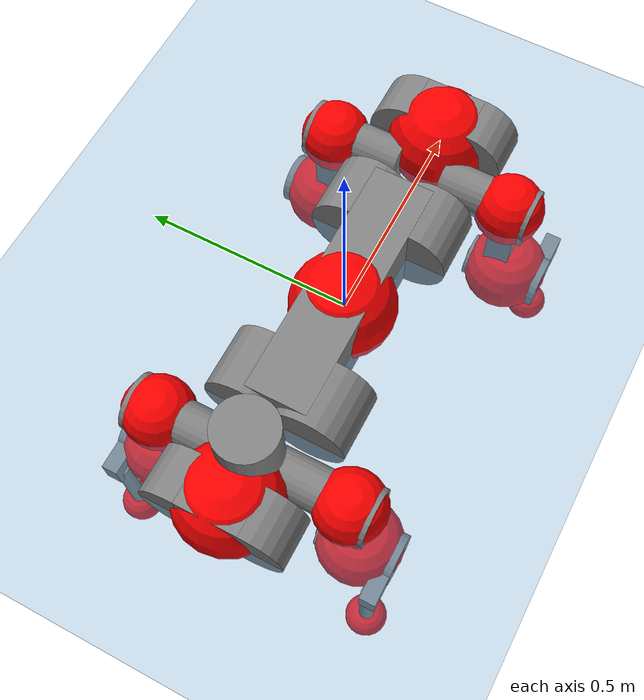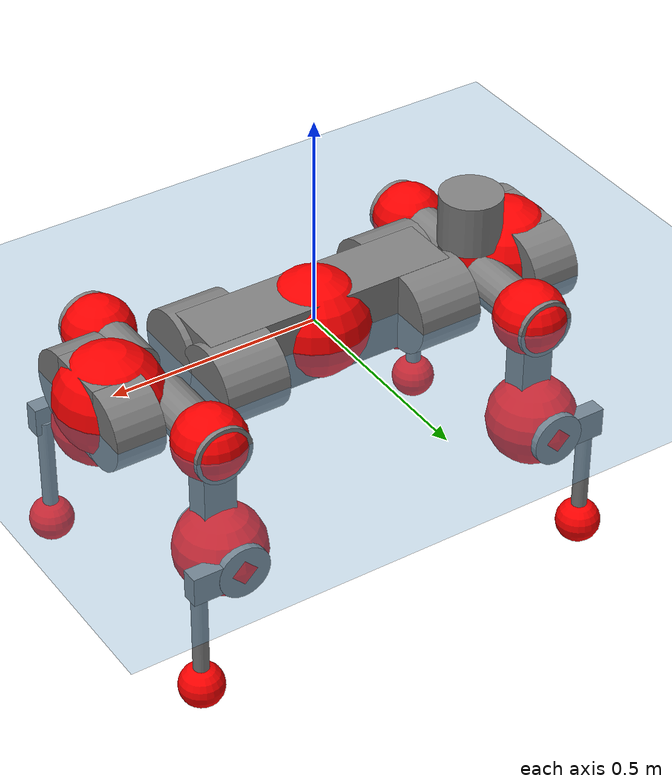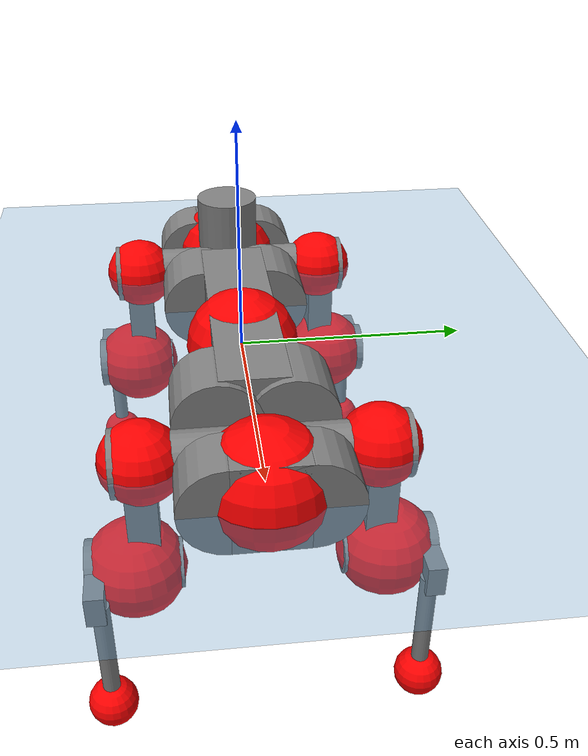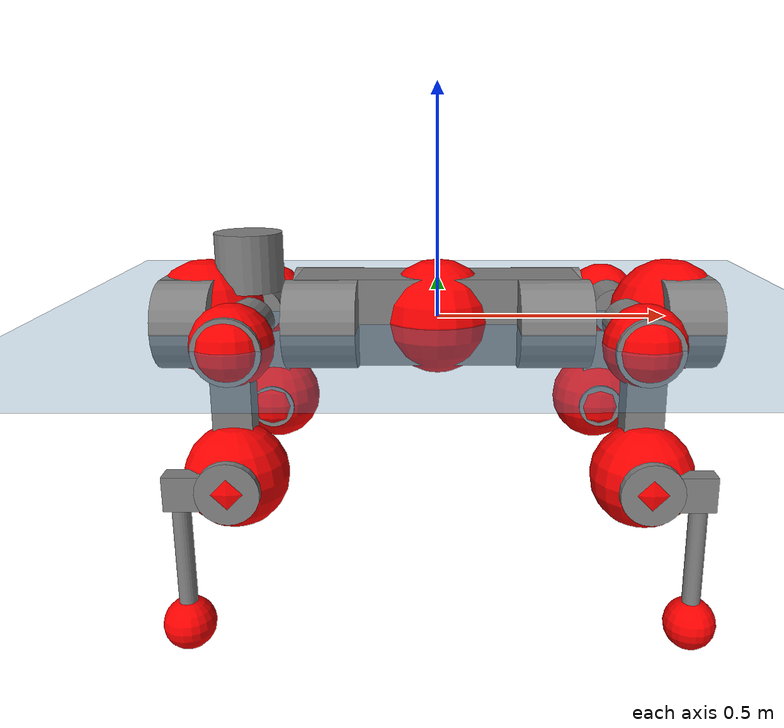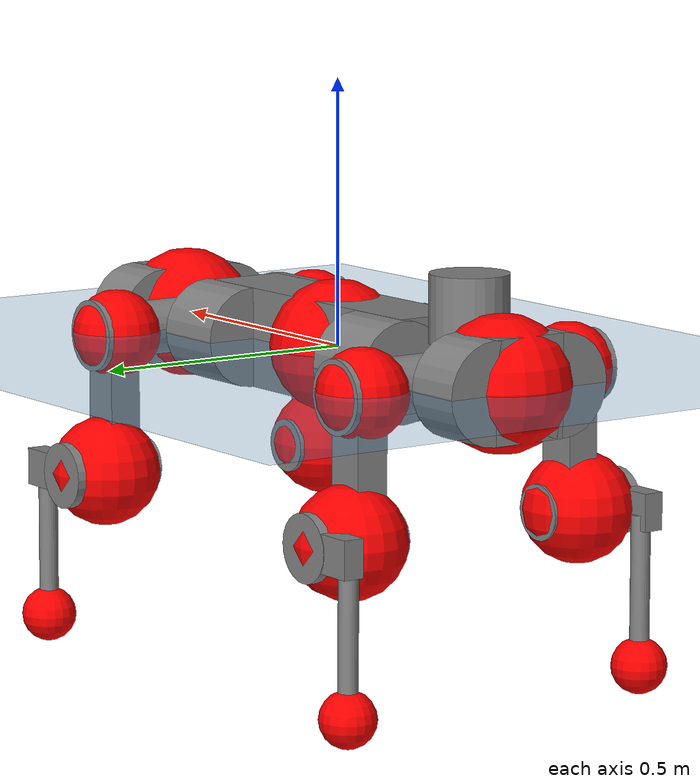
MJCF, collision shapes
<mujoco model="anymal_c">
  <compiler angle="radian" assetdir="assets" balanceinertia="true" inertiafromgeom="false"/>

  <option timestep="0.005" density="1.2" viscosity="2e-05"/>

  <size nkey="1"/>

  <visual>
    <quality shadowsize="8192"/>
    <map shadowclip="0.5"/>
  </visual>

  <default>
    <default class="/">
      <material specular="0" shininess="0.25"/>
      <geom contype="0" conaffinity="0" group="1" solref="-1000 -80"/>
      <site size="0.01 0.005 0.005" group="5"/>
      <general forcelimited="true" forcerange="-80 80" biastype="affine" gainprm="80" biasprm="0 -80 -2"/>
      <default class="anymal_c">
        <joint armature="0.01" damping="0.01" frictionloss="0.1"/>
        <default class="visual">
          <geom type="mesh" group="2"/>
          <default class="visual_zflip"/>
        </default>
        <default class="collision">
          <geom type="cylinder" group="3"/>
          <default class="foot">
            <geom size="0.03 0 0" type="sphere" condim="6" priority="1" friction="0.8 0.02 0.01" solimp="0.015 1 0.03"/>
          </default>
        </default>
      </default>
      <default class="reward_collision_sphere">
        <geom group="5" rgba="1 0 0 1"/>
      </default>
    </default>
  </default>

  <asset>
    <texture type="skybox" colorspace="auto" name="//unnamed_texture_0" builtin="gradient" rgb1="0.95 0.95 0.95" rgb2="0.95 0.95 0.95" width="100" height="600"/>
    <texture type="2d" colorspace="auto" name="texplane" builtin="checker" rgb1="0.345 0.575 0.748" rgb2="0.345 0.575 0.748" markrgb="1 1 1" width="512" height="512"/>
    <texture type="2d" colorspace="linear" name="base" file="base.png"/>
    <texture type="2d" colorspace="linear" name="top_shell" file="top_shell.png"/>
    <texture type="2d" colorspace="linear" name="bottom_shell" file="bottom_shell.png"/>
    <texture type="2d" colorspace="linear" name="remote" file="remote.png"/>
    <texture type="2d" colorspace="linear" name="hatch" file="hatch.png"/>
    <texture type="2d" colorspace="linear" name="handle" file="handle.png"/>
    <texture type="2d" colorspace="linear" name="face" file="face.png"/>
    <texture type="2d" colorspace="linear" name="battery" file="battery.png"/>
    <texture type="2d" colorspace="linear" name="lidar_cage" file="lidar_cage.png"/>
    <texture type="2d" colorspace="linear" name="depth_camera" file="depth_camera.png"/>
    <texture type="2d" colorspace="linear" name="wide_angle_camera" file="wide_angle_camera.png"/>
    <texture type="2d" colorspace="linear" name="lidar" file="lidar.png"/>
    <texture type="2d" colorspace="linear" name="drive" file="drive.png"/>
    <texture type="2d" colorspace="linear" name="hip_l" file="hip_l.png"/>
    <texture type="2d" colorspace="linear" name="shank_l" file="shank_l.png"/>
    <texture type="2d" colorspace="linear" name="foot" file="foot.png"/>
    <texture type="2d" colorspace="linear" name="thigh" file="thigh.png"/>
    <texture type="2d" colorspace="linear" name="shank_r" file="shank_r.png"/>
    <texture type="2d" colorspace="linear" name="hip_r" file="hip_r.png"/>
    <material name="MatPlane" class="/" texture="texplane" texuniform="true" texrepeat="2 2" specular="0.9" shininess="0.5"/>
    <material name="black_plastic" class="/" rgba="0.007 0.007 0.007 1"/>
    <material name="green" class="/" rgba="0.052 0.178 0.033 1"/>
    <material name="red" class="/" rgba="0.178 0.006 0.005 1"/>
    <material name="yellow" class="/" rgba="0.178 0.119 0.006 1"/>
    <material name="lwl" class="/" rgba="0.8 0.8 0.8 1"/>
    <material name="base" class="/" texture="base"/>
    <material name="top_shell" class="/" texture="top_shell"/>
    <material name="bottom_shell" class="/" texture="bottom_shell"/>
    <material name="hip_l" class="/" texture="hip_l"/>
    <material name="thigh" class="/" texture="thigh"/>
    <material name="shank_l" class="/" texture="shank_l"/>
    <material name="foot" class="/" texture="foot"/>
    <material name="hip_r" class="/" texture="hip_r"/>
    <material name="shank" class="/" texture="shank_r"/>
    <material name="hatch" class="/" texture="hatch"/>
    <material name="remote" class="/" texture="remote"/>
    <material name="handle" class="/" texture="handle"/>
    <material name="face" class="/" texture="face"/>
    <material name="depth_camera" class="/" texture="depth_camera"/>
    <material name="wide_angle_camera" class="/" texture="wide_angle_camera"/>
    <material name="battery" class="/" texture="battery"/>
    <material name="lidar_cage" class="/" texture="lidar_cage"/>
    <material name="lidar" class="/" texture="lidar"/>
    <material name="drive" class="/" texture="drive"/>
    <mesh name="base_0" class="/" file="base_0.obj"/>
    <mesh name="base_1" class="/" file="base_1.obj"/>
    <mesh name="base_2" class="/" file="base_2.obj"/>
    <mesh name="base_3" class="/" file="base_3.obj"/>
    <mesh name="base_4" class="/" file="base_4.obj"/>
    <mesh name="base_5" class="/" file="base_5.obj"/>
    <mesh name="top_shell" class="/" file="top_shell.obj"/>
    <mesh name="bottom_shell" class="/" file="bottom_shell.obj"/>
    <mesh name="remote" class="/" file="remote.obj"/>
    <mesh name="handle" class="/" file="handle.obj"/>
    <mesh name="face" class="/" file="face.obj"/>
    <mesh name="wide_angle_camera" class="/" file="wide_angle_camera.obj"/>
    <mesh name="depth_camera" class="/" file="depth_camera.obj"/>
    <mesh name="battery" class="/" file="battery.obj"/>
    <mesh name="lidar_cage" class="/" file="lidar_cage.obj"/>
    <mesh name="lidar" class="/" file="lidar.obj"/>
    <mesh name="drive" class="/" file="drive.obj"/>
    <mesh name="hip_l" class="/" file="hip_l.obj"/>
    <mesh name="thigh" class="/" file="thigh.obj"/>
    <mesh name="shank_l" class="/" file="shank_l.obj"/>
    <mesh name="foot" class="/" file="foot.obj"/>
    <mesh name="hip_r" class="/" file="hip_r.obj"/>
    <mesh name="hatch" class="/" file="hatch.obj"/>
    <mesh name="shank_r" class="/" file="shank_r.obj"/>
  </asset>

  <worldbody>
    <geom name="floor" class="/" size="100 100 0.125" type="plane" group="0" material="MatPlane"/>
    <light name="toplight_shadow" class="/" pos="0 0 5" dir="0.0990148 0.0990148 -0.990148" type="directional" ambient="0.04 0.04 0.04" diffuse="0.55 0.55 0.55" specular="0.12 0.12 0.12"/>
    <light name="toplight_fill" class="/" pos="0 0 5" dir="0.0990148 0.0990148 -0.990148" type="directional" castshadow="false" ambient="0.04 0.04 0.04" diffuse="0.3 0.3 0.3" specular="0.08 0.08 0.08"/>
    <body name="trunk" childclass="anymal_c" pos="0.000384237 0.0026766 0.000651084" quat="1 -0.000214615 0.000197485 0.000825645">
      <inertial pos="0.00267148 -0.000450209 0.0455046" quat="0.505957 0.50458 0.500435 0.488848" mass="22.5154" diaginertia="1.18057 1.02823 0.141043"/>
      <joint name="//unnamed_joint_0" type="free" armature="0" damping="0" frictionloss="0"/>
      <geom name="//unnamed_geom_1" class="visual" material="green" mesh="base_0"/>
      <geom name="//unnamed_geom_2" class="visual" material="yellow" mesh="base_1"/>
      <geom name="//unnamed_geom_3" class="visual" material="red" mesh="base_2"/>
      <geom name="//unnamed_geom_4" class="visual" material="black_plastic" mesh="base_3"/>
      <geom name="//unnamed_geom_5" class="visual" material="lwl" mesh="base_4"/>
      <geom name="//unnamed_geom_6" class="visual" material="base" mesh="base_5"/>
      <geom name="trunk_1" class="collision" size="0.303666 0.0732987 0.0942412" type="box"/>
      <geom name="trunk_2" class="collision" size="0.0942412 0.0759165" pos="0.244994 0.0767558 0" quat="0.707107 0 0.707107 0"/>
      <geom name="trunk_3" class="collision" size="0.0942412 0.0759165" pos="-0.244994 0.0767558 0" quat="0.707107 0 0.707107 0"/>
      <geom name="trunk_4" class="collision" size="0.0942412 0.0759165" pos="0.244994 -0.0767558 0" quat="0.707107 0 0.707107 0"/>
      <geom name="trunk_5" class="collision" size="0.0942412 0.0759165" pos="-0.244994 -0.0767558 0" quat="0.707107 0 0.707107 0"/>
      <geom name="//unnamed_geom_12" class="visual" material="top_shell" mesh="top_shell"/>
      <geom name="//unnamed_geom_13" class="visual" material="bottom_shell" mesh="bottom_shell"/>
      <geom name="//unnamed_geom_14" class="visual" material="remote" mesh="remote"/>
      <geom name="//unnamed_geom_15" class="visual" material="handle" mesh="handle"/>
      <geom name="//unnamed_geom_16" class="visual" pos="0.466897 0 0" quat="1 0 0 0" material="face" mesh="face"/>
      <geom name="trunk_6" class="collision" size="0.0575919 0.0732987 0.0942412" pos="0.528849 0 0" type="box"/>
      <geom name="//unnamed_geom_18" class="collision" size="0.0942412 0.0575919" pos="0.528849 0.0767558 0" quat="0.707107 0 0.707107 0"/>
      <geom name="//unnamed_geom_19" class="collision" size="0.0942412 0.0575919" pos="0.528849 -0.0767558 0" quat="0.707107 0 0.707107 0"/>
      <geom name="//unnamed_geom_20" class="visual" pos="0.519998 0 -0.0252384" quat="0.965926 0 0.258819 0" material="depth_camera" mesh="depth_camera"/>
      <geom name="//unnamed_geom_21" class="visual" pos="0.577848 0 0.0137492" material="wide_angle_camera" mesh="wide_angle_camera"/>
      <geom name="//unnamed_geom_22" class="visual_zflip" pos="-0.466897 0 0" quat="0 0 0 1" material="face" mesh="face"/>
      <geom name="trunk_7" class="collision" size="0.0575919 0.0732987 0.0942412" pos="-0.528849 0 0" quat="0 0 0 1" type="box"/>
      <geom name="//unnamed_geom_24" class="collision" size="0.0942412 0.0575919" pos="-0.528849 -0.0767558 0" quat="0 -0.707107 0 0.707107"/>
      <geom name="//unnamed_geom_25" class="collision" size="0.0942412 0.0575919" pos="-0.528849 0.0767558 0" quat="0 -0.707107 0 0.707107"/>
      <geom name="//unnamed_geom_26" class="visual" pos="-0.519998 0 -0.0252384" quat="0 -0.258819 0 0.965926" material="depth_camera" mesh="depth_camera"/>
      <geom name="//unnamed_geom_27" class="visual_zflip" pos="-0.577848 0 0.0137492" quat="0 0 0 1" material="wide_angle_camera" mesh="wide_angle_camera"/>
      <geom name="//unnamed_geom_28" class="visual" material="battery" mesh="battery"/>
      <geom name="//unnamed_geom_29" class="visual" pos="0 0.0834383 0.0282615" quat="0.683013 -0.183013 0.183013 0.683013" material="depth_camera" mesh="depth_camera"/>
      <geom name="//unnamed_geom_30" class="visual" pos="0 -0.0834383 0.0282615" quat="0.683013 0.183013 0.183013 -0.683013" material="depth_camera" mesh="depth_camera"/>
      <geom name="//unnamed_geom_31" class="visual" pos="-0.410013 0 0.0675063" quat="1 0 0 0" material="lidar_cage" mesh="lidar_cage"/>
      <geom name="trunk_8" class="collision" size="0.0732987 0.0628275" pos="-0.410013 0 0.122614"/>
      <geom name="//unnamed_geom_33" class="visual" pos="-0.410013 -1.17462e-05 0.130604" quat="0.707107 0 0 -0.707107" material="lidar" mesh="lidar"/>
      <geom name="//unnamed_geom_34" class="visual" pos="0.33781 0.113974 3.07152e-09" quat="0.258819 0.965926 0 0" material="drive" mesh="drive"/>
      <geom name="//unnamed_geom_35" class="visual" pos="0.33781 -0.113974 -3.07152e-09" quat="0.258819 -0.965926 0 0" material="drive" mesh="drive"/>
      <geom name="//unnamed_geom_36" class="visual" pos="-0.33781 0.113974 -3.07152e-09" quat="0 0 0.965926 -0.258819" material="drive" mesh="drive"/>
      <geom name="//unnamed_geom_37" class="visual" pos="-0.33781 -0.113974 3.07152e-09" quat="0 0 -0.965926 -0.258819" material="drive" mesh="drive"/>
      <geom name="//unnamed_geom_38" class="visual" pos="0.130664 0 0.0670471" quat="1 0 0 0" material="hatch" mesh="hatch"/>
      <geom name="//unnamed_geom_39" class="reward_collision_sphere" size="0.125655"/>
      <geom name="//unnamed_geom_40" class="reward_collision_sphere" size="0.125655" pos="0.506884 0 0"/>
      <geom name="//unnamed_geom_41" class="reward_collision_sphere" size="0.125655" pos="-0.506884 0 0"/>
      <site name="imu" pos="0.290496 0.00731126 0.046024" size="0.0104712"/>
      <camera name="track" pos="0 -2.19302 0" quat="0.707107 0.707107 0 0" mode="trackcom"/>
      <camera name="ego_camera" pos="0.506884 0 -0.0367381" quat="-0.5 -0.5 0.5 0.5"/>
      <body name="LF_HIP" pos="0.33857 0.112882 -0.00329544" quat="0.258587 0.965988 0.000164745 -0.000259697">
        <inertial pos="0.064111 -0.0191795 -0.00715991" quat="-0.127902 0.709654 -0.135536 0.679457" mass="3.17142" diaginertia="0.0105664 0.00770294 0.00217348"/>
        <joint name="LF_HAA" pos="0 0 0" axis="0.999963 0.00476983 -0.00716355" range="-0.708743 0.492948" armature="0.010878" damping="0.0175803" frictionloss="0.119128"/>
        <geom name="//unnamed_geom_42" class="visual" pos="0 0.000180683 -2.96771e-05" quat="0.258819 -0.965926 0 0" material="hip_l" mesh="hip_l"/>
        <geom name="//unnamed_geom_43" class="visual" pos="0.0674719 -0.0812997 -0.0456214" quat="0.183013 -0.683013 0.683013 0.183013" material="drive" mesh="drive"/>
        <geom name="//unnamed_geom_44" class="collision" size="0.0523562 0.0732987" pos="0.0674719 -0.0131141 -0.00634192" quat="-0.353553 -0.612372 0.612372 -0.353553"/>
        <body name="LF_THIGH" pos="0.0652258 -0.0793581 -0.0403165" quat="0.18264 -0.682689 0.683125 0.184169">
          <inertial pos="0.0357043 -4.70323e-05 -0.22451" quat="0.993934 -0.0046337 -0.067142 0.0869808" mass="3.37543" diaginertia="0.0524954 0.0457866 0.00268005"/>
          <joint name="LF_HFE" pos="0 0 0" axis="0.99987 0.0118781 -0.0108789" range="-3.09146 3.13594" armature="0.0110952" damping="0" frictionloss="0.0911883"/>
          <geom name="//unnamed_geom_45" class="visual" pos="0.000594858 9.37358e-07 0" quat="0.707107 0 0 -0.707107" material="thigh" mesh="thigh"/>
          <geom name="//unnamed_geom_46" class="collision" size="0.0680631 0.041885" pos="0.0450564 0 0" quat="0.5 0.5 -0.5 -0.5"/>
          <geom name="//unnamed_geom_47" class="collision" size="0.0392672 0.0314137 0.147973" pos="0.0337923 0 -0.12979" quat="0.707107 0 0 -0.707107" type="box"/>
          <geom name="//unnamed_geom_48" class="visual" pos="0.112979 0 -0.261759" quat="1 0 0 0" material="drive" mesh="drive"/>
          <geom name="//unnamed_geom_49" class="collision" size="0.0523562 0.0732987" pos="0.0341302 0 -0.261759" quat="0.707107 0 0.707107 0"/>
          <geom name="//unnamed_geom_50" class="reward_collision_sphere" size="0.08377" pos="0.0281602 0 0"/>
          <body name="LF_SHANK" pos="0.11207 0.00118735 -0.263905" quat="1 -0.000594758 -0.000282466 -0.000639085">
            <inertial pos="0.0089432 -0.0686974 -0.0745504" quat="0.992812 -0.116992 -0.000638328 -0.0252383" mass="0.718285" diaginertia="0.0186127 0.0151223 0.000745341"/>
            <joint name="LF_KFE" pos="0 0 0" axis="0.999901 -0.00227063 0.0138882" range="-3.14656 3.12406" armature="0.010403" damping="0.00112431" frictionloss="0.10311"/>
            <geom name="//unnamed_geom_51" class="visual" pos="0.00019397 0.00103426 0" quat="0.707107 0 0 -0.707107" material="shank_l" mesh="shank_l"/>
            <geom name="LF_kfe_act" class="collision" size="0.0628275 0.0209425" pos="0.0225282 0 0" quat="0.5 0.5 -0.5 -0.5"/>
            <geom name="//unnamed_geom_53" class="collision" size="0.0602086 0.0353405 0.0198954" pos="0.0225282 -0.0630483 0" quat="0.5 0.5 -0.5 -0.5" type="box"/>
            <geom name="//unnamed_geom_54" class="visual" pos="0.0146996 -0.0961049 -0.31041" quat="0.382683 0 0 -0.92388" material="foot" mesh="foot"/>
            <geom name="LF_calf" class="collision" size="0.0183247 0.147908" pos="0.0146996 -0.0964382 -0.155205" quat="0.707107 0 0 -0.707107"/>
            <geom name="LF_foot" class="foot" size="0.0340569" pos="0.0146996 -0.0964382 -0.289745" quat="0.707107 0 0 -0.707107"/>
            <geom name="//unnamed_geom_57" class="reward_collision_sphere" size="0.104712" pos="-0.0563205 0 0"/>
            <geom name="//unnamed_geom_58" class="reward_collision_sphere" size="0.0523562" pos="0.0146996 -0.0964382 -0.289745"/>
            <site name="LF_foot" class="foot" pos="0.0146996 -0.0964382 -0.289745" quat="0.707107 0 0 -0.707107" size="0.0104712"/>
          </body>
        </body>
      </body>
      <body name="RF_HIP" pos="0.339026 -0.1156 -0.000842312" quat="0.258909 -0.965902 4.87626e-05 7.44416e-05">
        <inertial pos="0.0630268 0.0195659 -0.00761582" quat="0.133391 0.686837 0.120726 0.704193" mass="3.19103" diaginertia="0.0106659 0.00753202 0.00214433"/>
        <joint name="RF_HAA" pos="0 0 0" axis="0.999994 -0.0032521 0.00119675" range="-0.488414 0.726602" armature="0.0105169" damping="0.00996548" frictionloss="0.0994551"/>
        <geom name="//unnamed_geom_59" class="visual" pos="0 -0.000180682 -2.9677e-05" quat="0.258819 0.965926 0 0" material="hip_r" mesh="hip_r"/>
        <geom name="//unnamed_geom_60" class="visual" pos="0.0674719 0.0812997 -0.0456214" quat="0.183013 0.683013 0.683013 -0.183013" material="drive" mesh="drive"/>
        <geom name="//unnamed_geom_61" class="collision" size="0.0523562 0.0732987" pos="0.0674719 0.0131141 -0.00634192" quat="-0.353553 0.612372 0.612372 0.353553"/>
        <body name="RF_THIGH" pos="0.0674087 0.0776663 -0.0366724" quat="0.183019 0.683091 0.682935 -0.183005">
          <inertial pos="0.0320476 -0.00183278 -0.223444" quat="0.992574 -0.00633847 -0.0820981 0.0895315" mass="3.63069" diaginertia="0.0552912 0.0492682 0.00282448"/>
          <joint name="RF_HFE" pos="0 0 0" axis="0.999903 0.000329229 0.013934" stiffness="0.0158038" range="-3.14666 3.19471" armature="0.00926489" damping="0.0037596" frictionloss="0.110735"/>
          <geom name="//unnamed_geom_62" class="visual" pos="0.000594858 9.37358e-07 0" quat="0.707107 0 0 -0.707107" material="thigh" mesh="thigh"/>
          <geom name="//unnamed_geom_63" class="collision" size="0.0680631 0.041885" pos="0.0450564 0 0" quat="0.5 0.5 0.5 0.5"/>
          <geom name="//unnamed_geom_64" class="collision" size="0.0392672 0.0314137 0.147973" pos="0.0337923 0 -0.12979" quat="0.707107 0 0 0.707107" type="box"/>
          <geom name="//unnamed_geom_65" class="visual" pos="0.112979 0 -0.261759" quat="1 0 0 0" material="drive" mesh="drive"/>
          <geom name="//unnamed_geom_66" class="collision" size="0.0523562 0.0732987" pos="0.0341302 0 -0.261759" quat="0.707107 0 0.707107 0"/>
          <geom name="//unnamed_geom_67" class="reward_collision_sphere" size="0.08377" pos="0.0281602 0 0"/>
          <body name="RF_SHANK" pos="0.113891 0.00255914 -0.260594" quat="1 -0.000257548 -0.000172068 -0.000412528">
            <inertial pos="0.00425019 0.064891 -0.0729969" quat="0.993458 0.111522 -0.00314235 0.0243621" mass="0.662331" diaginertia="0.0189168 0.0146742 0.000716958"/>
            <joint name="RF_KFE" pos="0 0 0" axis="0.999903 -0.00295148 0.0135783" range="-3.1333 3.15028" armature="0.0107345" damping="0.00825505" frictionloss="0.107544"/>
            <geom name="//unnamed_geom_68" class="visual" pos="0.000193969 -0.00103426 0" quat="0.707107 0 0 0.707107" material="shank" mesh="shank_r"/>
            <geom name="RF_kfe_act" class="collision" size="0.0628275 0.0209425" pos="0.0225282 0 0" quat="0.5 0.5 0.5 0.5"/>
            <geom name="//unnamed_geom_70" class="collision" size="0.0602086 0.0353405 0.0198954" pos="0.0225282 0.0630483 0" quat="0.5 0.5 0.5 0.5" type="box"/>
            <geom name="//unnamed_geom_71" class="visual" pos="0.0146997 0.0961049 -0.31041" quat="0.382683 0 0 0.92388" material="foot" mesh="foot"/>
            <geom name="RF_calf" class="collision" size="0.0183247 0.147908" pos="0.0146996 0.0964382 -0.155205" quat="0.707107 0 0 0.707107"/>
            <geom name="RF_foot" class="foot" size="0.0292439" pos="0.0146996 0.0964382 -0.289745" quat="0.707107 0 0 0.707107"/>
            <geom name="//unnamed_geom_74" class="reward_collision_sphere" size="0.104712" pos="-0.0563205 0 0"/>
            <geom name="//unnamed_geom_75" class="reward_collision_sphere" size="0.0523562" pos="0.0146996 0.0964382 -0.289745"/>
            <site name="RF_foot" class="foot" pos="0.0146996 0.0964382 -0.289745" quat="0.707107 0 0 0.707107" size="0.0104712"/>
          </body>
        </body>
      </body>
      <body name="LH_HIP" pos="-0.339711 0.113579 -0.0014041" quat="0.000687092 0.000307144 0.965987 -0.258591">
        <inertial pos="0.0635097 0.0183853 -0.00740751" quat="0.137677 0.677809 0.126397 0.711086" mass="3.07892" diaginertia="0.0103495 0.0078322 0.00212646"/>
        <joint name="LH_HAA" pos="0 0 0" axis="0.999883 -0.014268 -0.00552147" range="-0.451007 0.777181" armature="0.0104967" damping="0.00868395" frictionloss="0.0916341"/>
        <geom name="//unnamed_geom_76" class="visual" pos="0 -0.000180682 -2.9677e-05" quat="-0.258819 -0.965926 0 0" material="hip_r" mesh="hip_r"/>
        <geom name="//unnamed_geom_77" class="visual" pos="0.0674719 0.0812997 -0.0456214" quat="0.183013 0.683013 0.683013 -0.183013" material="drive" mesh="drive"/>
        <geom name="//unnamed_geom_78" class="collision" size="0.0523562 0.0732987" pos="0.0674719 0.0131141 -0.00634192" quat="-0.353553 0.612372 0.612372 0.353553"/>
        <body name="LH_THIGH" pos="0.0694009 0.0826704 -0.0383061" quat="0.184277 0.682844 0.682614 -0.183859">
          <inertial pos="0.0361915 -0.000697893 -0.226288" quat="0.992135 -0.00996294 -0.0865326 0.08989" mass="3.67198" diaginertia="0.0546297 0.0480219 0.00284754"/>
          <joint name="LH_HFE" pos="0 0 0" axis="0.999999 0.000518745 0.0010633" range="-3.0998 3.18673" armature="0.0103155" damping="0.0209741" frictionloss="0.109688"/>
          <geom name="//unnamed_geom_79" class="visual" pos="0.000594858 9.37358e-07 0" quat="0.707107 0 0 -0.707107" material="thigh" mesh="thigh"/>
          <geom name="//unnamed_geom_80" class="collision" size="0.0680631 0.041885" pos="0.0450564 0 0" quat="0.5 0.5 -0.5 -0.5"/>
          <geom name="//unnamed_geom_81" class="collision" size="0.0392672 0.0314137 0.147973" pos="0.0337923 0 -0.12979" quat="0.707107 0 0 -0.707107" type="box"/>
          <geom name="//unnamed_geom_82" class="visual" pos="0.112979 0 -0.261759" quat="1 0 0 0" material="drive" mesh="drive"/>
          <geom name="//unnamed_geom_83" class="collision" size="0.0523562 0.0732987" pos="0.0341302 0 -0.261759" quat="0.707107 0 0.707107 0"/>
          <geom name="//unnamed_geom_84" class="reward_collision_sphere" size="0.08377" pos="0.0281602 0 0"/>
          <body name="LH_SHANK" pos="0.110757 0.000802507 -0.260653" quat="1 0.000373854 0.00039523 -0.000324851">
            <inertial pos="0.0059658 0.0668731 -0.0760542" quat="0.993897 0.106723 -0.0107119 0.0257671" mass="0.6736" diaginertia="0.0186133 0.0141132 0.000721665"/>
            <joint name="LH_KFE" pos="0 0 0" axis="0.999933 0.00793425 0.00838195" range="-3.11591 3.09285" armature="0.011397" damping="0.00622558" frictionloss="0.0970089"/>
            <geom name="//unnamed_geom_85" class="visual" pos="0.000193969 -0.00103426 0" quat="-0.707107 0 0 -0.707107" material="shank" mesh="shank_r"/>
            <geom name="LH_kfe_act" class="collision" size="0.0628275 0.0209425" pos="0.0225282 0 0" quat="0.5 0.5 -0.5 -0.5"/>
            <geom name="//unnamed_geom_87" class="collision" size="0.0602086 0.0353405 0.0198954" pos="0.0225282 0.0630483 0" quat="0.5 0.5 -0.5 -0.5" type="box"/>
            <geom name="//unnamed_geom_88" class="visual" pos="0.0146997 0.0961049 -0.31041" quat="-0.382683 0 0 -0.92388" material="foot" mesh="foot"/>
            <geom name="LH_calf" class="collision" size="0.0183247 0.147908" pos="0.0146996 0.0964382 -0.155205" quat="0.707107 0 0 -0.707107"/>
            <geom name="LH_foot" class="foot" size="0.030262" pos="0.0146996 0.0964382 -0.289745" quat="0.707107 0 0 -0.707107"/>
            <geom name="//unnamed_geom_91" class="reward_collision_sphere" size="0.104712" pos="-0.0563205 0 0"/>
            <geom name="//unnamed_geom_92" class="reward_collision_sphere" size="0.0523562" pos="0.0146996 0.0964382 -0.289745"/>
            <site name="LH_foot" class="foot" pos="0.0146996 0.0964382 -0.289745" quat="0.707107 0 0 -0.707107" size="0.0104712"/>
          </body>
        </body>
      </body>
      <body name="RH_HIP" pos="-0.337179 -0.110908 0.000746195" quat="-0.000602713 -0.000491309 -0.965726 -0.259563">
        <inertial pos="0.0656682 -0.0141529 -0.00729922" quat="-0.128515 0.711035 -0.137052 0.677591" mass="3.14092" diaginertia="0.0108224 0.00791444 0.00218681"/>
        <joint name="RH_HAA" pos="0 0 0" axis="0.999991 -0.00344466 -0.00266807" range="-0.71533 0.543219" armature="0.00915731" damping="0.0245242" frictionloss="0.100209"/>
        <geom name="//unnamed_geom_93" class="visual" pos="0 0.000180683 -2.96771e-05" quat="-0.258819 0.965926 0 0" material="hip_l" mesh="hip_l"/>
        <geom name="//unnamed_geom_94" class="visual" pos="0.0674719 -0.0812997 -0.0456214" quat="-0.183013 0.683013 -0.683013 -0.183013" material="drive" mesh="drive"/>
        <geom name="//unnamed_geom_95" class="collision" size="0.0523562 0.0732987" pos="0.0674719 -0.0131141 -0.00634192" quat="0.353553 0.612372 -0.612372 0.353553"/>
        <body name="RH_THIGH" pos="0.0678635 -0.0807867 -0.0384476" quat="-0.183407 0.681945 -0.683811 -0.183617">
          <inertial pos="0.0370355 0.000569198 -0.223102" quat="0.99308 -0.00528151 -0.0863085 0.0794689" mass="3.42356" diaginertia="0.0551446 0.0477049 0.00266315"/>
          <joint name="RH_HFE" pos="0 0 0" axis="0.999963 0.00630163 0.00585573" range="-3.1538 3.19775" armature="0.0109293" damping="0.00826821" frictionloss="0.0903618"/>
          <geom name="//unnamed_geom_96" class="visual" pos="0.000594858 9.37358e-07 0" quat="0.707107 0 0 -0.707107" material="thigh" mesh="thigh"/>
          <geom name="//unnamed_geom_97" class="collision" size="0.0680631 0.041885" pos="0.0450564 0 0" quat="0.5 0.5 0.5 0.5"/>
          <geom name="//unnamed_geom_98" class="collision" size="0.0392672 0.0314137 0.147973" pos="0.0337923 0 -0.12979" quat="0.707107 0 0 0.707107" type="box"/>
          <geom name="//unnamed_geom_99" class="visual" pos="0.112979 0 -0.261759" quat="1 0 0 0" material="drive" mesh="drive"/>
          <geom name="//unnamed_geom_100" class="collision" size="0.0523562 0.0732987" pos="0.0341302 0 -0.261759" quat="0.707107 0 0.707107 0"/>
          <geom name="//unnamed_geom_101" class="reward_collision_sphere" size="0.08377" pos="0.0281602 0 0"/>
          <body name="RH_SHANK" pos="0.110396 0.00171932 -0.260812" quat="1 0.000107555 -5.8535e-05 -0.000252768">
            <inertial pos="0.00569566 -0.066124 -0.074467" quat="0.992514 -0.118856 -0.00127588 -0.0280775" mass="0.685775" diaginertia="0.0179837 0.0148284 0.000738369"/>
            <joint name="RH_KFE" pos="0 0 0" axis="1 0.000166946 0.000470872" range="-3.17016 3.13052" armature="0.0105709" damping="0.0161711" frictionloss="0.101707"/>
            <geom name="//unnamed_geom_102" class="visual" pos="0.00019397 0.00103426 0" quat="0.707107 0 0 -0.707107" material="shank_l" mesh="shank_l"/>
            <geom name="RH_kfe_act" class="collision" size="0.0628275 0.0209425" pos="0.0225282 0 0" quat="0.5 0.5 0.5 0.5"/>
            <geom name="//unnamed_geom_104" class="collision" size="0.0602086 0.0353405 0.0198954" pos="0.0225282 -0.0630483 0" quat="0.5 0.5 0.5 0.5" type="box"/>
            <geom name="//unnamed_geom_105" class="visual" pos="0.0146996 -0.0961049 -0.31041" quat="0.382683 0 0 -0.92388" material="foot" mesh="foot"/>
            <geom name="RH_calf" class="collision" size="0.0183247 0.147908" pos="0.0146996 -0.0964382 -0.155205" quat="0.707107 0 0 0.707107"/>
            <geom name="RH_foot" class="foot" size="0.0305892" pos="0.0146996 -0.0964382 -0.289745" quat="0.707107 0 0 0.707107"/>
            <geom name="//unnamed_geom_108" class="reward_collision_sphere" size="0.104712" pos="-0.0563205 0 0"/>
            <geom name="//unnamed_geom_109" class="reward_collision_sphere" size="0.0523562" pos="0.0146996 -0.0964382 -0.289745"/>
            <site name="RH_foot" class="foot" pos="0.0146996 -0.0964382 -0.289745" quat="0.707107 0 0 0.707107" size="0.0104712"/>
          </body>
        </body>
      </body>
    </body>
  </worldbody>

  <contact>
    <pair class="/" geom1="floor" geom2="LF_foot" name="//unnamed_contact_0"/>
    <pair class="/" geom1="floor" geom2="RF_foot" name="//unnamed_contact_1"/>
    <pair class="/" geom1="floor" geom2="LH_foot" name="//unnamed_contact_2"/>
    <pair class="/" geom1="floor" geom2="RH_foot" name="//unnamed_contact_3"/>
  </contact>

  <actuator>
    <general name="LF_HAA" class="/" joint="LF_HAA" forcerange="-85.2657 85.2657" gainprm="84.1887" biasprm="0 -84.1887 -2.27343"/>
    <general name="LF_HFE" class="/" joint="LF_HFE" forcerange="-80.681 80.681" gainprm="84.1887" biasprm="0 -84.1887 -2.27343"/>
    <general name="LF_KFE" class="/" joint="LF_KFE" forcerange="-92.8471 92.8471" gainprm="84.1887" biasprm="0 -84.1887 -2.27343"/>
    <general name="RF_HAA" class="/" joint="RF_HAA" forcerange="-84.8239 84.8239" gainprm="84.1887" biasprm="0 -84.1887 -2.27343"/>
    <general name="RF_HFE" class="/" joint="RF_HFE" forcerange="-88.492 88.492" gainprm="84.1887" biasprm="0 -84.1887 -2.27343"/>
    <general name="RF_KFE" class="/" joint="RF_KFE" forcerange="-91.9191 91.9191" gainprm="84.1887" biasprm="0 -84.1887 -2.27343"/>
    <general name="LH_HAA" class="/" joint="LH_HAA" forcerange="-85.6409 85.6409" gainprm="84.1887" biasprm="0 -84.1887 -2.27343"/>
    <general name="LH_HFE" class="/" joint="LH_HFE" forcerange="-91.7488 91.7488" gainprm="84.1887" biasprm="0 -84.1887 -2.27343"/>
    <general name="LH_KFE" class="/" joint="LH_KFE" forcerange="-76.3604 76.3604" gainprm="84.1887" biasprm="0 -84.1887 -2.27343"/>
    <general name="RH_HAA" class="/" joint="RH_HAA" forcerange="-86.8781 86.8781" gainprm="84.1887" biasprm="0 -84.1887 -2.27343"/>
    <general name="RH_HFE" class="/" joint="RH_HFE" forcerange="-92.5419 92.5419" gainprm="84.1887" biasprm="0 -84.1887 -2.27343"/>
    <general name="RH_KFE" class="/" joint="RH_KFE" forcerange="-88.0893 88.0893" gainprm="84.1887" biasprm="0 -84.1887 -2.27343"/>
  </actuator>

  <sensor>
    <gyro site="imu" name="imu_angular_velocity"/>
    <velocimeter site="imu" name="imu_linear_velocity"/>
    <framelinvel objtype="site" objname="LF_foot" name="LF_foot_global_linear_velocity"/>
    <framelinvel objtype="site" objname="RF_foot" name="RF_foot_global_linear_velocity"/>
    <framelinvel objtype="site" objname="LH_foot" name="LH_foot_global_linear_velocity"/>
    <framelinvel objtype="site" objname="RH_foot" name="RH_foot_global_linear_velocity"/>
  </sensor>

  <keyframe>
    <key name="home" qpos="0 0 0.55 1 0 0 0 0 0.4 -0.8 0 -0.4 0.8 0 -0.4 0.8 0 0.4 -0.8"/>
  </keyframe>
</mujoco>
